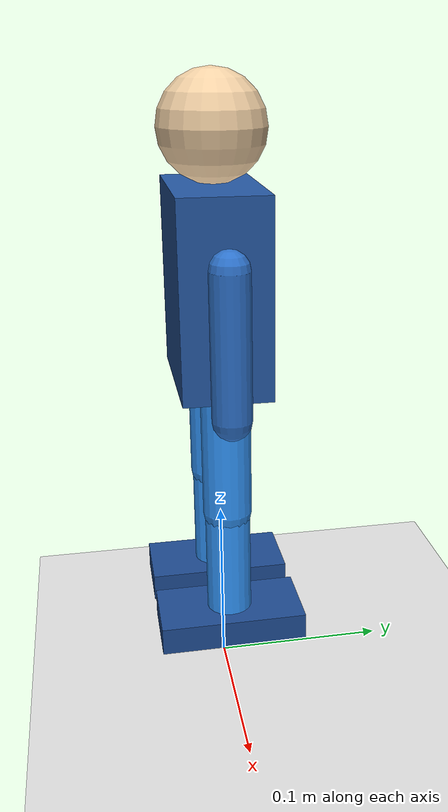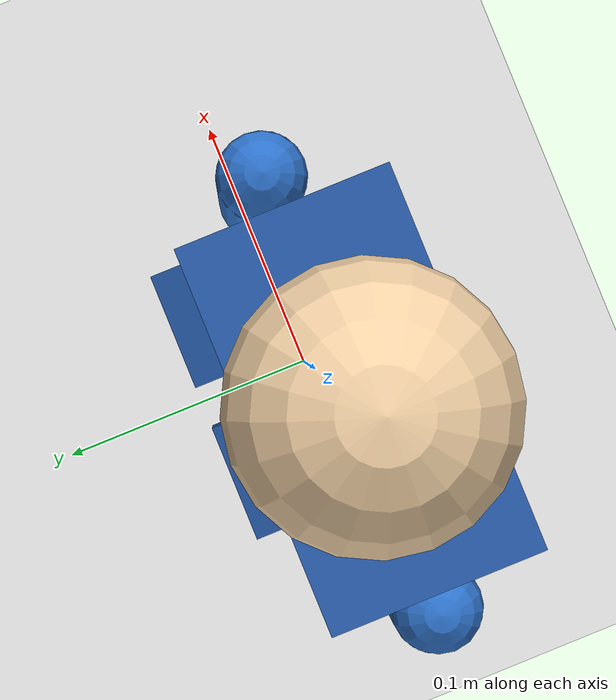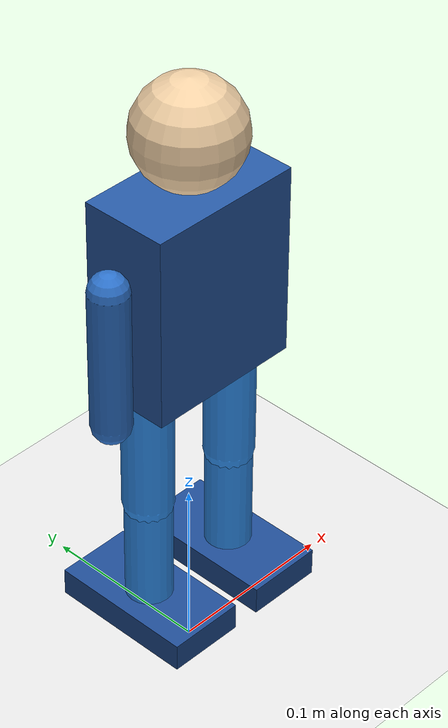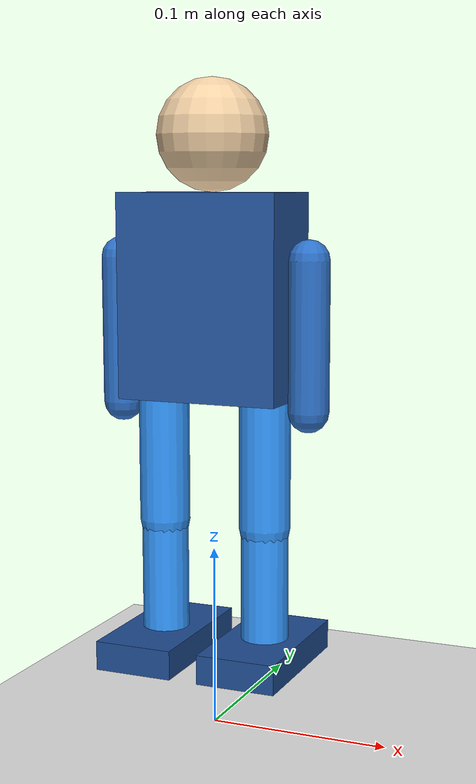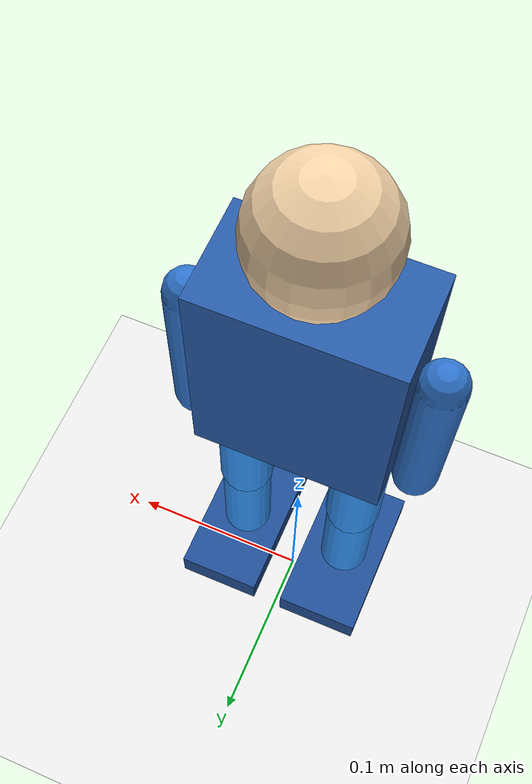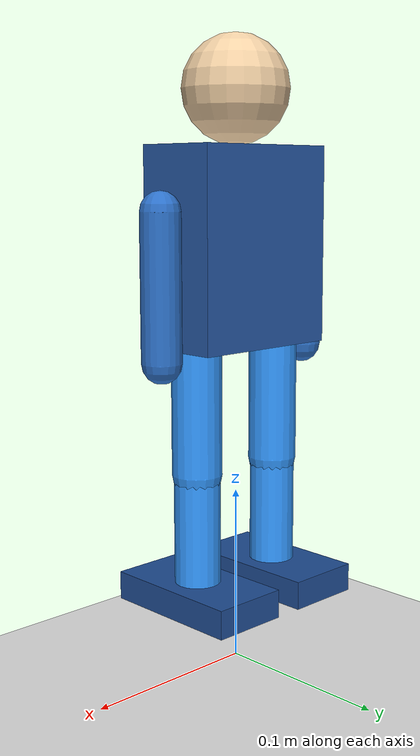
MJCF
<mujoco model="elf1_mini_biped">

  <compiler angle="degree"/>
  <option gravity="0 0 -9.81" timestep="0.002"/>

  <visual>
    <map znear="0.01"/>
    <global azimuth="140" elevation="-20"/>
  </visual>

  <default>
    <joint damping="1.0" armature="0.01"/>
    <geom friction="0.8 0.1 0.1" density="500" rgba="0.2 0.6 1 1"/>
    <motor ctrllimited="true" ctrlrange="-1 1"/>
  </default>

  <worldbody>

    <geom name="floor"
          type="plane"
          size="2 2 0.1"
          rgba="0.9 0.9 0.9 1"/>

    <light name="sun"
           pos="0 0 2"
           dir="0 0 -1"
           diffuse="1 1 1"
           specular="0.2 0.2 0.2"/>

    <camera name="nice_view"
            pos="0.6 -0.8 0.45"
            xyaxes="0.8 0.6 0  -0.2 0.3 0.93"/>

    <body name="torso" pos="0 0 0.24">
      <freejoint/>

      <geom name="torso_geom"
            type="box"
            size="0.045 0.025 0.055"
            mass="0.45"
            rgba="0.15 0.35 0.65 1"/>

      <!-- Kopf -->
      <body name="head" pos="0 0 0.085">
        <geom type="sphere"
              size="0.03"
              mass="0.08"
              rgba="0.95 0.82 0.65 1"/>
      </body>

      <!-- LINKES BEIN -->

      <body name="left_thigh" pos="0.03 0 -0.055">

        <joint name="left_hip"
               type="hinge"
               axis="0 1 0"
               range="-35 35"/>

        <geom type="capsule"
              fromto="0 0 0 0 0 -0.07"
              size="0.014"
              mass="0.08"/>

        <body name="left_shin" pos="0 0 -0.07">

          <joint name="left_knee"
                 type="hinge"
                 axis="0 1 0"
                 range="0 90"/>

          <geom type="capsule"
                fromto="0 0 0 0 0 -0.07"
                size="0.013"
                mass="0.07"/>

          <body name="left_foot" pos="0 0 -0.07" euler="0 0 -90">

            <geom type="box"
                  size="0.042 0.022 0.008"
                  pos="0 0 0"
                  mass="0.05"
                  rgba="0.12 0.30 0.58 1"/>

          </body>
        </body>
      </body>

      <!-- RECHTES BEIN -->

      <body name="right_thigh" pos="-0.03 0 -0.055">

        <joint name="right_hip"
               type="hinge"
               axis="0 1 0"
               range="-35 35"/>

        <geom type="capsule"
              fromto="0 0 0 0 0 -0.07"
              size="0.014"
              mass="0.08"/>

        <body name="right_shin" pos="0 0 -0.07">

          <joint name="right_knee"
                 type="hinge"
                 axis="0 1 0"
                 range="0 90"/>

          <geom type="capsule"
                fromto="0 0 0 0 0 -0.07"
                size="0.013"
                mass="0.07"/>

          <body name="right_foot" pos="0 0 -0.07" euler="0 0 90">

            <geom type="box"
                  size="0.042 0.022 0.008"
                  pos="0 0 0"
                  mass="0.05"
                  rgba="0.12 0.30 0.58 1"/>

          </body>
        </body>
      </body>

      <!-- LINKER ARM (2 DOF Schulter) -->

      <body name="left_shoulder_pitch_body" pos="0.055 0 0.02">

        <inertial pos="0 0 0"
                  mass="0.005"
                  diaginertia="1e-5 1e-5 1e-5"/>

        <joint name="left_shoulder_pitch"
               type="hinge"
               axis="1 0 0"
               range="-80 80"/>

        <body name="left_shoulder_roll_body" pos="0 0 0">

          <joint name="left_shoulder_roll"
                 type="hinge"
                 axis="0 1 0"
                 range="-80 80"/>

          <geom type="capsule"
                fromto="0 0 0 0 0 -0.08"
                size="0.011"
                mass="0.04"
                rgba="0.18 0.45 0.80 1"/>

        </body>
      </body>

      <!-- RECHTER ARM (2 DOF Schulter) -->

      <body name="right_shoulder_pitch_body" pos="-0.055 0 0.02">

        <inertial pos="0 0 0"
                  mass="0.005"
                  diaginertia="1e-5 1e-5 1e-5"/>

        <joint name="right_shoulder_pitch"
               type="hinge"
               axis="1 0 0"
               range="-80 80"/>

        <body name="right_shoulder_roll_body" pos="0 0 0">

          <joint name="right_shoulder_roll"
                 type="hinge"
                 axis="0 1 0"
                 range="-80 80"/>

          <geom type="capsule"
                fromto="0 0 0 0 0 -0.08"
                size="0.011"
                mass="0.04"
                rgba="0.18 0.45 0.80 1"/>

        </body>
      </body>

    </body>
  </worldbody>

  <actuator>

    <motor name="m_left_hip" joint="left_hip" gear="20"/>
    <motor name="m_left_knee" joint="left_knee" gear="20"/>

    <motor name="m_right_hip" joint="right_hip" gear="20"/>
    <motor name="m_right_knee" joint="right_knee" gear="20"/>

    <motor name="m_left_shoulder_pitch" joint="left_shoulder_pitch" gear="10"/>
    <motor name="m_left_shoulder_roll" joint="left_shoulder_roll" gear="10"/>

    <motor name="m_right_shoulder_pitch" joint="right_shoulder_pitch" gear="10"/>
    <motor name="m_right_shoulder_roll" joint="right_shoulder_roll" gear="10"/>

  </actuator>

  <keyframe>
    <key name="home"
         qpos="0 0 0.24  1 0 0 0   0 0.2  0 0.2   0 0   0 0"/>
  </keyframe>

</mujoco>
